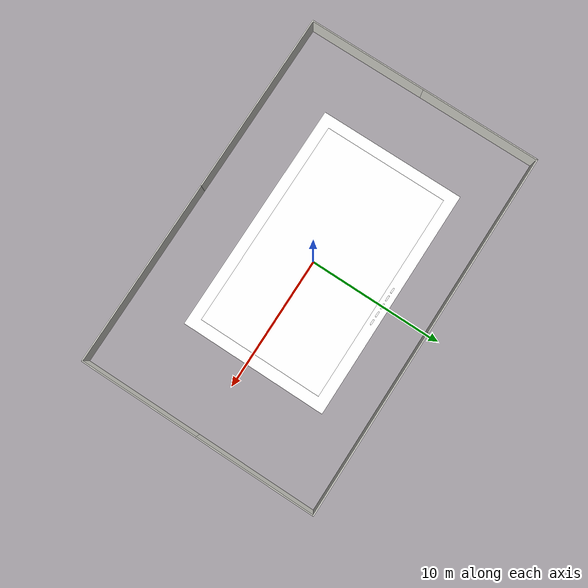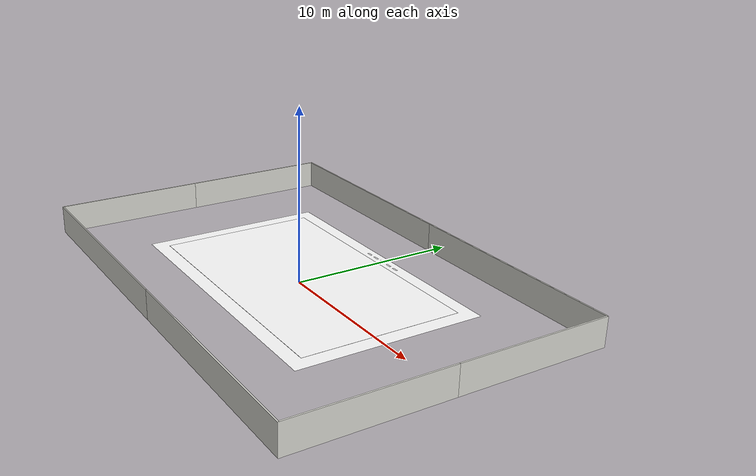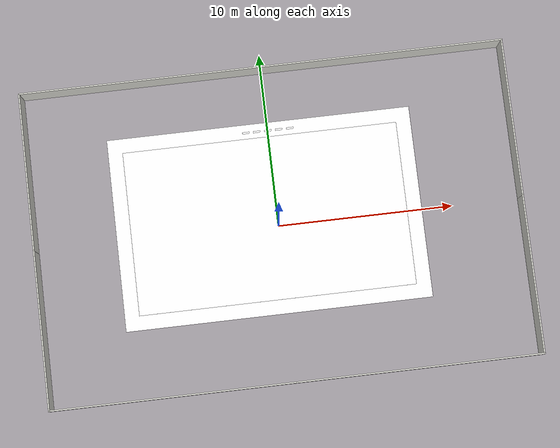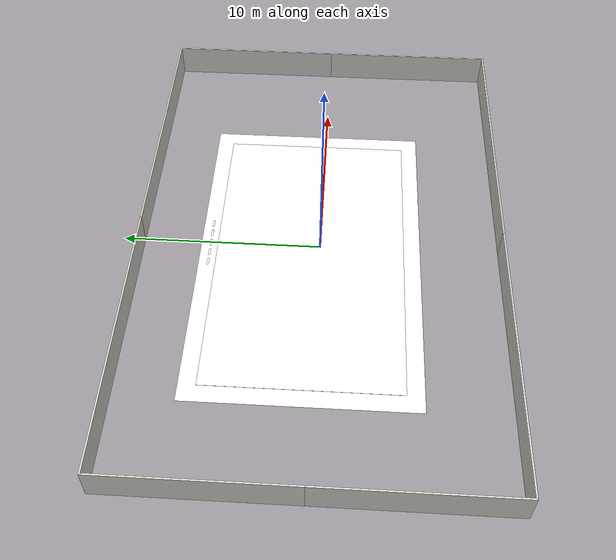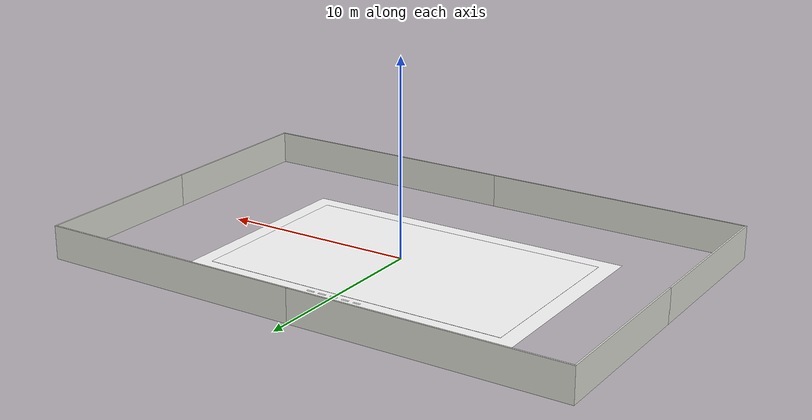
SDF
<sdf version="1.7">
 <world name="kookmin_xycar_track">
  <model name="cad_outer_wall">
   <static>true</static>
   <link name="cad_outer_wall_000">
    <pose>-13.8145 -4.4879 0.8500 0.000000 0.000000 -1.570796</pose>
    <collision name="collision">
     <geometry><box><size>9.0559 0.0800 1.7000</size></box></geometry>
     <surface>
      <friction>
       <ode><mu>50</mu><mu2>50</mu2></ode>
       <bullet><friction>1</friction><rolling_friction>0.1</rolling_friction></bullet>
      </friction>
     </surface>
    </collision>
    <visual name="visual">
     <geometry><box><size>9.0559 0.0800 1.7000</size></box></geometry>
     <material><ambient>0.8549 0.8549 0.8235 1</ambient><diffuse>0.8549 0.8549 0.8235 1</diffuse></material>
    </visual>
   </link>
   <link name="cad_outer_wall_001">
    <pose>-6.9072 -8.9759 0.8500 0.000000 0.000000 0.000000</pose>
    <collision name="collision">
     <geometry><box><size>13.8945 0.0800 1.7000</size></box></geometry>
     <surface>
      <friction>
       <ode><mu>50</mu><mu2>50</mu2></ode>
       <bullet><friction>1</friction><rolling_friction>0.1</rolling_friction></bullet>
      </friction>
     </surface>
    </collision>
    <visual name="visual">
     <geometry><box><size>13.8945 0.0800 1.7000</size></box></geometry>
     <material><ambient>0.8549 0.8549 0.8235 1</ambient><diffuse>0.8549 0.8549 0.8235 1</diffuse></material>
    </visual>
   </link>
   <link name="cad_outer_wall_002">
    <pose>6.9072 -8.9759 0.8500 0.000000 0.000000 0.000000</pose>
    <collision name="collision">
     <geometry><box><size>13.8945 0.0800 1.7000</size></box></geometry>
     <surface>
      <friction>
       <ode><mu>50</mu><mu2>50</mu2></ode>
       <bullet><friction>1</friction><rolling_friction>0.1</rolling_friction></bullet>
      </friction>
     </surface>
    </collision>
    <visual name="visual">
     <geometry><box><size>13.8945 0.0800 1.7000</size></box></geometry>
     <material><ambient>0.8549 0.8549 0.8235 1</ambient><diffuse>0.8549 0.8549 0.8235 1</diffuse></material>
    </visual>
   </link>
   <link name="cad_outer_wall_003">
    <pose>13.8145 -4.4879 0.8500 0.000000 0.000000 1.570796</pose>
    <collision name="collision">
     <geometry><box><size>9.0559 0.0800 1.7000</size></box></geometry>
     <surface>
      <friction>
       <ode><mu>50</mu><mu2>50</mu2></ode>
       <bullet><friction>1</friction><rolling_friction>0.1</rolling_friction></bullet>
      </friction>
     </surface>
    </collision>
    <visual name="visual">
     <geometry><box><size>9.0559 0.0800 1.7000</size></box></geometry>
     <material><ambient>0.8549 0.8549 0.8235 1</ambient><diffuse>0.8549 0.8549 0.8235 1</diffuse></material>
    </visual>
   </link>
   <link name="cad_outer_wall_004">
    <pose>13.8145 4.4879 0.8500 0.000000 0.000000 1.570796</pose>
    <collision name="collision">
     <geometry><box><size>9.0559 0.0800 1.7000</size></box></geometry>
     <surface>
      <friction>
       <ode><mu>50</mu><mu2>50</mu2></ode>
       <bullet><friction>1</friction><rolling_friction>0.1</rolling_friction></bullet>
      </friction>
     </surface>
    </collision>
    <visual name="visual">
     <geometry><box><size>9.0559 0.0800 1.7000</size></box></geometry>
     <material><ambient>0.8549 0.8549 0.8235 1</ambient><diffuse>0.8549 0.8549 0.8235 1</diffuse></material>
    </visual>
   </link>
   <link name="cad_outer_wall_005">
    <pose>6.9072 8.9759 0.8500 0.000000 0.000000 3.141593</pose>
    <collision name="collision">
     <geometry><box><size>13.8945 0.0800 1.7000</size></box></geometry>
     <surface>
      <friction>
       <ode><mu>50</mu><mu2>50</mu2></ode>
       <bullet><friction>1</friction><rolling_friction>0.1</rolling_friction></bullet>
      </friction>
     </surface>
    </collision>
    <visual name="visual">
     <geometry><box><size>13.8945 0.0800 1.7000</size></box></geometry>
     <material><ambient>0.8549 0.8549 0.8235 1</ambient><diffuse>0.8549 0.8549 0.8235 1</diffuse></material>
    </visual>
   </link>
   <link name="cad_outer_wall_006">
    <pose>-6.9072 8.9759 0.8500 0.000000 0.000000 3.141593</pose>
    <collision name="collision">
     <geometry><box><size>13.8945 0.0800 1.7000</size></box></geometry>
     <surface>
      <friction>
       <ode><mu>50</mu><mu2>50</mu2></ode>
       <bullet><friction>1</friction><rolling_friction>0.1</rolling_friction></bullet>
      </friction>
     </surface>
    </collision>
    <visual name="visual">
     <geometry><box><size>13.8945 0.0800 1.7000</size></box></geometry>
     <material><ambient>0.8549 0.8549 0.8235 1</ambient><diffuse>0.8549 0.8549 0.8235 1</diffuse></material>
    </visual>
   </link>
   <link name="cad_outer_wall_007">
    <pose>-13.8145 4.4879 0.8500 0.000000 0.000000 -1.570796</pose>
    <collision name="collision">
     <geometry><box><size>9.0559 0.0800 1.7000</size></box></geometry>
     <surface>
      <friction>
       <ode><mu>50</mu><mu2>50</mu2></ode>
       <bullet><friction>1</friction><rolling_friction>0.1</rolling_friction></bullet>
      </friction>
     </surface>
    </collision>
    <visual name="visual">
     <geometry><box><size>9.0559 0.0800 1.7000</size></box></geometry>
     <material><ambient>0.8549 0.8549 0.8235 1</ambient><diffuse>0.8549 0.8549 0.8235 1</diffuse></material>
    </visual>
   </link>
  </model>
  <model name="white_line_cad_v4_001">
   <static>true</static>
   <pose>-0.5200 0.5100 0.0140 0 0 0</pose>
   <link name="white_line_cad_v4_001_surface">
    <visual name="visual">
     <cast_shadows>false</cast_shadows>
     <geometry><plane><normal>0 0 1</normal><size>17.5600 11.1000</size></plane></geometry>
     <material>
      <ambient>1 1 1 1</ambient>
      <diffuse>1 1 1 1</diffuse>
      <emissive>0.9490 0.9490 0.9255 1</emissive>
      <pbr>
       <metal>
        <albedo_map>file://media/materials/textures/kookmin_white_line_cad_v4_001.png</albedo_map>
        <roughness>1</roughness>
        <metalness>0</metalness>
       </metal>
      </pbr>
     </material>
    </visual>
   </link>
  </model>
  <model name="white_line_cad_v4_002">
   <static>true</static>
   <pose>-0.5250 0.5050 0.0142 0 0 0</pose>
   <link name="white_line_cad_v4_002_surface">
    <visual name="visual">
     <cast_shadows>false</cast_shadows>
     <geometry><plane><normal>0 0 1</normal><size>15.8700 9.4300</size></plane></geometry>
     <material>
      <ambient>1 1 1 1</ambient>
      <diffuse>1 1 1 1</diffuse>
      <emissive>0.9490 0.9490 0.9255 1</emissive>
      <pbr>
       <metal>
        <albedo_map>file://media/materials/textures/kookmin_white_line_cad_v4_002.png</albedo_map>
        <roughness>1</roughness>
        <metalness>0</metalness>
       </metal>
      </pbr>
     </material>
    </visual>
   </link>
  </model>
  <model name="yellow_centerline_dash_010">
   <static>true</static>
   <pose>-1.2750 5.5800 0.0184 0 0 0</pose>
   <link name="yellow_centerline_dash_010_surface">
    <visual name="visual">
     <cast_shadows>false</cast_shadows>
     <geometry><plane><normal>0 0 1</normal><size>0.3900 0.1000</size></plane></geometry>
     <material>
      <ambient>1 1 1 1</ambient>
      <diffuse>1 1 1 1</diffuse>
      <emissive>1.0000 0.7686 0.0471 1</emissive>
      <pbr>
       <metal>
        <albedo_map>file://media/materials/textures/kookmin_yellow_centerline_cad_v4_dash_010.png</albedo_map>
        <roughness>1</roughness>
        <metalness>0</metalness>
       </metal>
      </pbr>
     </material>
    </visual>
   </link>
  </model>
  <model name="yellow_centerline_dash_011">
   <static>true</static>
   <pose>-0.6450 5.5800 0.0185 0 0 0</pose>
   <link name="yellow_centerline_dash_011_surface">
    <visual name="visual">
     <cast_shadows>false</cast_shadows>
     <geometry><plane><normal>0 0 1</normal><size>0.4100 0.1000</size></plane></geometry>
     <material>
      <ambient>1 1 1 1</ambient>
      <diffuse>1 1 1 1</diffuse>
      <emissive>1.0000 0.7686 0.0471 1</emissive>
      <pbr>
       <metal>
        <albedo_map>file://media/materials/textures/kookmin_yellow_centerline_cad_v4_dash_011.png</albedo_map>
        <roughness>1</roughness>
        <metalness>0</metalness>
       </metal>
      </pbr>
     </material>
    </visual>
   </link>
  </model>
  <model name="yellow_centerline_dash_012">
   <static>true</static>
   <pose>-0.0050 5.5800 0.0185 0 0 0</pose>
   <link name="yellow_centerline_dash_012_surface">
    <visual name="visual">
     <cast_shadows>false</cast_shadows>
     <geometry><plane><normal>0 0 1</normal><size>0.4100 0.1000</size></plane></geometry>
     <material>
      <ambient>1 1 1 1</ambient>
      <diffuse>1 1 1 1</diffuse>
      <emissive>1.0000 0.7686 0.0471 1</emissive>
      <pbr>
       <metal>
        <albedo_map>file://media/materials/textures/kookmin_yellow_centerline_cad_v4_dash_012.png</albedo_map>
        <roughness>1</roughness>
        <metalness>0</metalness>
       </metal>
      </pbr>
     </material>
    </visual>
   </link>
  </model>
  <model name="yellow_centerline_dash_013">
   <static>true</static>
   <pose>0.6350 5.5800 0.0186 0 0 0</pose>
   <link name="yellow_centerline_dash_013_surface">
    <visual name="visual">
     <cast_shadows>false</cast_shadows>
     <geometry><plane><normal>0 0 1</normal><size>0.4100 0.1000</size></plane></geometry>
     <material>
      <ambient>1 1 1 1</ambient>
      <diffuse>1 1 1 1</diffuse>
      <emissive>1.0000 0.7686 0.0471 1</emissive>
      <pbr>
       <metal>
        <albedo_map>file://media/materials/textures/kookmin_yellow_centerline_cad_v4_dash_013.png</albedo_map>
        <roughness>1</roughness>
        <metalness>0</metalness>
       </metal>
      </pbr>
     </material>
    </visual>
   </link>
  </model>
  <model name="yellow_centerline_dash_014">
   <static>true</static>
   <pose>1.2750 5.5800 0.0186 0 0 0</pose>
   <link name="yellow_centerline_dash_014_surface">
    <visual name="visual">
     <cast_shadows>false</cast_shadows>
     <geometry><plane><normal>0 0 1</normal><size>0.4100 0.1000</size></plane></geometry>
     <material>
      <ambient>1 1 1 1</ambient>
      <diffuse>1 1 1 1</diffuse>
      <emissive>1.0000 0.7686 0.0471 1</emissive>
      <pbr>
       <metal>
        <albedo_map>file://media/materials/textures/kookmin_yellow_centerline_cad_v4_dash_014.png</albedo_map>
        <roughness>1</roughness>
        <metalness>0</metalness>
       </metal>
      </pbr>
     </material>
    </visual>
   </link>
  </model>
 </world>
</sdf>
